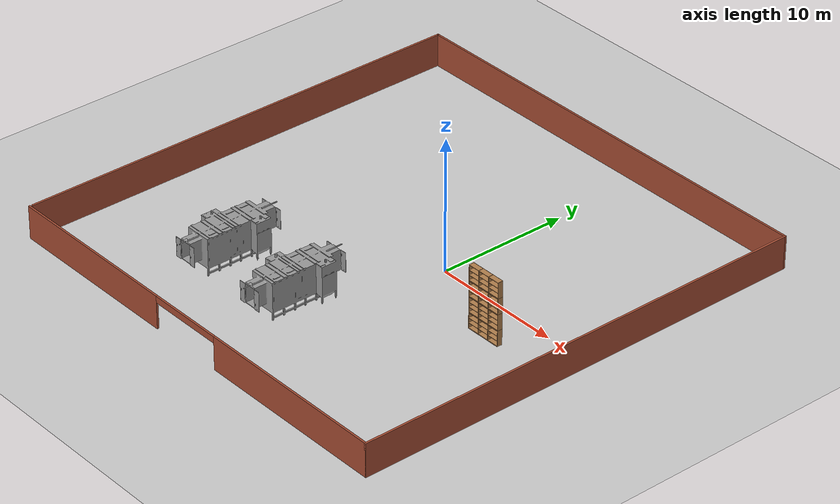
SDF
<sdf version="1.6">
 <world name="default">
  <model name="ground_plane">
   <static>1</static>
   <link name="link">
    <collision name="collision">
     <geometry><plane><normal>0 0 1</normal><size>100 100</size></plane></geometry>
     <surface>
      <contact><collide_bitmask>65535</collide_bitmask></contact>
      <friction><ode><mu>100</mu><mu2>50</mu2></ode></friction>
     </surface>
    </collision>
    <visual name="visual">
     <cast_shadows>0</cast_shadows>
     <geometry><plane><normal>0 0 1</normal><size>100 100</size></plane></geometry>
     <material>
      <script><uri>file://media/materials/scripts/gazebo.material</uri><name>Gazebo/Grey</name></script>
     </material>
    </visual>
   </link>
  </model>
  <model name="shelf2.0_clone_0">
   <model name="shelf1.0">
    <model name="bookshelf">
     <static>1</static>
     <link name="link">
      <inertial><mass>1</mass></inertial>
      <collision name="back">
       <pose>0 0.005 0.6 0 -0 0</pose>
       <geometry><box><size>0.9 0.01 1.2</size></box></geometry>
      </collision>
      <visual name="visual1">
       <pose>0 0.005 0.6 0 -0 0</pose>
       <geometry><box><size>0.9 0.01 1.2</size></box></geometry>
       <material>
        <script><uri>file://media/materials/scripts/gazebo.material</uri><name>Gazebo/Wood</name></script>
       </material>
      </visual>
      <collision name="left_side">
       <pose>0.45 -0.195 0.6 0 -0 0</pose>
       <geometry><box><size>0.02 0.4 1.2</size></box></geometry>
      </collision>
      <visual name="visual2">
       <pose>0.45 -0.195 0.6 0 -0 0</pose>
       <geometry><box><size>0.02 0.4 1.2</size></box></geometry>
       <material>
        <script><uri>file://media/materials/scripts/gazebo.material</uri><name>Gazebo/Wood</name></script>
       </material>
      </visual>
      <collision name="right_side">
       <pose>-0.45 -0.195 0.6 0 -0 0</pose>
       <geometry><box><size>0.02 0.4 1.2</size></box></geometry>
      </collision>
      <visual name="visual3">
       <pose>-0.45 -0.195 0.6 0 -0 0</pose>
       <geometry><box><size>0.02 0.4 1.2</size></box></geometry>
       <material>
        <script><uri>file://media/materials/scripts/gazebo.material</uri><name>Gazebo/Wood</name></script>
       </material>
      </visual>
      <collision name="bottom">
       <pose>0 -0.195 0.03 0 -0 0</pose>
       <geometry><box><size>0.88 0.4 0.06</size></box></geometry>
      </collision>
      <visual name="visual4">
       <pose>0 -0.195 0.03 0 -0 0</pose>
       <geometry><box><size>0.88 0.4 0.06</size></box></geometry>
       <material>
        <script><uri>file://media/materials/scripts/gazebo.material</uri><name>Gazebo/Wood</name></script>
       </material>
      </visual>
      <collision name="top">
       <pose>0 -0.195 1.19 0 -0 0</pose>
       <geometry><box><size>0.88 0.4 0.02</size></box></geometry>
      </collision>
      <visual name="visual5">
       <pose>0 -0.195 1.19 0 -0 0</pose>
       <geometry><box><size>0.88 0.4 0.02</size></box></geometry>
       <material>
        <script><uri>file://media/materials/scripts/gazebo.material</uri><name>Gazebo/Wood</name></script>
       </material>
      </visual>
      <collision name="low_shelf">
       <pose>0 -0.195 0.43 0 -0 0</pose>
       <geometry><box><size>0.88 0.4 0.02</size></box></geometry>
      </collision>
      <visual name="visual6">
       <pose>0 -0.195 0.43 0 -0 0</pose>
       <geometry><box><size>0.88 0.4 0.02</size></box></geometry>
       <material>
        <script><uri>file://media/materials/scripts/gazebo.material</uri><name>Gazebo/Wood</name></script>
       </material>
      </visual>
      <collision name="high_shelf">
       <pose>0 -0.195 0.8 0 -0 0</pose>
       <geometry><box><size>0.88 0.4 0.02</size></box></geometry>
      </collision>
      <visual name="visual7">
       <pose>0 -0.195 0.8 0 -0 0</pose>
       <geometry><box><size>0.88 0.4 0.02</size></box></geometry>
       <material>
        <script><uri>file://media/materials/scripts/gazebo.material</uri><name>Gazebo/Wood</name></script>
       </material>
      </visual>
     </link>
     <pose>1e-06 0 -1.8 0 -0 0</pose>
    </model>
    <model name="bookshelf_clone">
     <static>1</static>
     <link name="link">
      <inertial><mass>1</mass></inertial>
      <collision name="back">
       <pose>0 0.005 0.6 0 -0 0</pose>
       <geometry><box><size>0.9 0.01 1.2</size></box></geometry>
      </collision>
      <visual name="visual1">
       <pose>0 0.005 0.6 0 -0 0</pose>
       <geometry><box><size>0.9 0.01 1.2</size></box></geometry>
       <material>
        <script><uri>file://media/materials/scripts/gazebo.material</uri><name>Gazebo/Wood</name></script>
       </material>
      </visual>
      <collision name="left_side">
       <pose>0.45 -0.195 0.6 0 -0 0</pose>
       <geometry><box><size>0.02 0.4 1.2</size></box></geometry>
      </collision>
      <visual name="visual2">
       <pose>0.45 -0.195 0.6 0 -0 0</pose>
       <geometry><box><size>0.02 0.4 1.2</size></box></geometry>
       <material>
        <script><uri>file://media/materials/scripts/gazebo.material</uri><name>Gazebo/Wood</name></script>
       </material>
      </visual>
      <collision name="right_side">
       <pose>-0.45 -0.195 0.6 0 -0 0</pose>
       <geometry><box><size>0.02 0.4 1.2</size></box></geometry>
      </collision>
      <visual name="visual3">
       <pose>-0.45 -0.195 0.6 0 -0 0</pose>
       <geometry><box><size>0.02 0.4 1.2</size></box></geometry>
       <material>
        <script><uri>file://media/materials/scripts/gazebo.material</uri><name>Gazebo/Wood</name></script>
       </material>
      </visual>
      <collision name="bottom">
       <pose>0 -0.195 0.03 0 -0 0</pose>
       <geometry><box><size>0.88 0.4 0.06</size></box></geometry>
      </collision>
      <visual name="visual4">
       <pose>0 -0.195 0.03 0 -0 0</pose>
       <geometry><box><size>0.88 0.4 0.06</size></box></geometry>
       <material>
        <script><uri>file://media/materials/scripts/gazebo.material</uri><name>Gazebo/Wood</name></script>
       </material>
      </visual>
      <collision name="top">
       <pose>0 -0.195 1.19 0 -0 0</pose>
       <geometry><box><size>0.88 0.4 0.02</size></box></geometry>
      </collision>
      <visual name="visual5">
       <pose>0 -0.195 1.19 0 -0 0</pose>
       <geometry><box><size>0.88 0.4 0.02</size></box></geometry>
       <material>
        <script><uri>file://media/materials/scripts/gazebo.material</uri><name>Gazebo/Wood</name></script>
       </material>
      </visual>
      <collision name="low_shelf">
       <pose>0 -0.195 0.43 0 -0 0</pose>
       <geometry><box><size>0.88 0.4 0.02</size></box></geometry>
      </collision>
      <visual name="visual6">
       <pose>0 -0.195 0.43 0 -0 0</pose>
       <geometry><box><size>0.88 0.4 0.02</size></box></geometry>
       <material>
        <script><uri>file://media/materials/scripts/gazebo.material</uri><name>Gazebo/Wood</name></script>
       </material>
      </visual>
      <collision name="high_shelf">
       <pose>0 -0.195 0.8 0 -0 0</pose>
       <geometry><box><size>0.88 0.4 0.02</size></box></geometry>
      </collision>
      <visual name="visual7">
       <pose>0 -0.195 0.8 0 -0 0</pose>
       <geometry><box><size>0.88 0.4 0.02</size></box></geometry>
       <material>
        <script><uri>file://media/materials/scripts/gazebo.material</uri><name>Gazebo/Wood</name></script>
       </material>
      </visual>
     </link>
     <pose>1e-06 0 -0.600002 0 -0 0</pose>
    </model>
    <model name="bookshelf_clone_0">
     <static>1</static>
     <link name="link">
      <inertial><mass>1</mass></inertial>
      <collision name="back">
       <pose>0 0.005 0.6 0 -0 0</pose>
       <geometry><box><size>0.9 0.01 1.2</size></box></geometry>
      </collision>
      <visual name="visual1">
       <pose>0 0.005 0.6 0 -0 0</pose>
       <geometry><box><size>0.9 0.01 1.2</size></box></geometry>
       <material>
        <script><uri>file://media/materials/scripts/gazebo.material</uri><name>Gazebo/Wood</name></script>
       </material>
      </visual>
      <collision name="left_side">
       <pose>0.45 -0.195 0.6 0 -0 0</pose>
       <geometry><box><size>0.02 0.4 1.2</size></box></geometry>
      </collision>
      <visual name="visual2">
       <pose>0.45 -0.195 0.6 0 -0 0</pose>
       <geometry><box><size>0.02 0.4 1.2</size></box></geometry>
       <material>
        <script><uri>file://media/materials/scripts/gazebo.material</uri><name>Gazebo/Wood</name></script>
       </material>
      </visual>
      <collision name="right_side">
       <pose>-0.45 -0.195 0.6 0 -0 0</pose>
       <geometry><box><size>0.02 0.4 1.2</size></box></geometry>
      </collision>
      <visual name="visual3">
       <pose>-0.45 -0.195 0.6 0 -0 0</pose>
       <geometry><box><size>0.02 0.4 1.2</size></box></geometry>
       <material>
        <script><uri>file://media/materials/scripts/gazebo.material</uri><name>Gazebo/Wood</name></script>
       </material>
      </visual>
      <collision name="bottom">
       <pose>0 -0.195 0.03 0 -0 0</pose>
       <geometry><box><size>0.88 0.4 0.06</size></box></geometry>
      </collision>
      <visual name="visual4">
       <pose>0 -0.195 0.03 0 -0 0</pose>
       <geometry><box><size>0.88 0.4 0.06</size></box></geometry>
       <material>
        <script><uri>file://media/materials/scripts/gazebo.material</uri><name>Gazebo/Wood</name></script>
       </material>
      </visual>
      <collision name="top">
       <pose>0 -0.195 1.19 0 -0 0</pose>
       <geometry><box><size>0.88 0.4 0.02</size></box></geometry>
      </collision>
      <visual name="visual5">
       <pose>0 -0.195 1.19 0 -0 0</pose>
       <geometry><box><size>0.88 0.4 0.02</size></box></geometry>
       <material>
        <script><uri>file://media/materials/scripts/gazebo.material</uri><name>Gazebo/Wood</name></script>
       </material>
      </visual>
      <collision name="low_shelf">
       <pose>0 -0.195 0.43 0 -0 0</pose>
       <geometry><box><size>0.88 0.4 0.02</size></box></geometry>
      </collision>
      <visual name="visual6">
       <pose>0 -0.195 0.43 0 -0 0</pose>
       <geometry><box><size>0.88 0.4 0.02</size></box></geometry>
       <material>
        <script><uri>file://media/materials/scripts/gazebo.material</uri><name>Gazebo/Wood</name></script>
       </material>
      </visual>
      <collision name="high_shelf">
       <pose>0 -0.195 0.8 0 -0 0</pose>
       <geometry><box><size>0.88 0.4 0.02</size></box></geometry>
      </collision>
      <visual name="visual7">
       <pose>0 -0.195 0.8 0 -0 0</pose>
       <geometry><box><size>0.88 0.4 0.02</size></box></geometry>
       <material>
        <script><uri>file://media/materials/scripts/gazebo.material</uri><name>Gazebo/Wood</name></script>
       </material>
      </visual>
     </link>
     <pose>1e-06 0 0.599998 0 -0 0</pose>
    </model>
    <model name="bookshelf_clone_0_clone">
     <static>1</static>
     <link name="link">
      <inertial><mass>1</mass></inertial>
      <collision name="back">
       <pose>0 0.005 0.6 0 -0 0</pose>
       <geometry><box><size>0.9 0.01 1.2</size></box></geometry>
      </collision>
      <visual name="visual1">
       <pose>0 0.005 0.6 0 -0 0</pose>
       <geometry><box><size>0.9 0.01 1.2</size></box></geometry>
       <material>
        <script><uri>file://media/materials/scripts/gazebo.material</uri><name>Gazebo/Wood</name></script>
       </material>
      </visual>
      <collision name="left_side">
       <pose>0.45 -0.195 0.6 0 -0 0</pose>
       <geometry><box><size>0.02 0.4 1.2</size></box></geometry>
      </collision>
      <visual name="visual2">
       <pose>0.45 -0.195 0.6 0 -0 0</pose>
       <geometry><box><size>0.02 0.4 1.2</size></box></geometry>
       <material>
        <script><uri>file://media/materials/scripts/gazebo.material</uri><name>Gazebo/Wood</name></script>
       </material>
      </visual>
      <collision name="right_side">
       <pose>-0.45 -0.195 0.6 0 -0 0</pose>
       <geometry><box><size>0.02 0.4 1.2</size></box></geometry>
      </collision>
      <visual name="visual3">
       <pose>-0.45 -0.195 0.6 0 -0 0</pose>
       <geometry><box><size>0.02 0.4 1.2</size></box></geometry>
       <material>
        <script><uri>file://media/materials/scripts/gazebo.material</uri><name>Gazebo/Wood</name></script>
       </material>
      </visual>
      <collision name="bottom">
       <pose>0 -0.195 0.03 0 -0 0</pose>
       <geometry><box><size>0.88 0.4 0.06</size></box></geometry>
      </collision>
      <visual name="visual4">
       <pose>0 -0.195 0.03 0 -0 0</pose>
       <geometry><box><size>0.88 0.4 0.06</size></box></geometry>
       <material>
        <script><uri>file://media/materials/scripts/gazebo.material</uri><name>Gazebo/Wood</name></script>
       </material>
      </visual>
      <collision name="top">
       <pose>0 -0.195 1.19 0 -0 0</pose>
       <geometry><box><size>0.88 0.4 0.02</size></box></geometry>
      </collision>
      <visual name="visual5">
       <pose>0 -0.195 1.19 0 -0 0</pose>
       <geometry><box><size>0.88 0.4 0.02</size></box></geometry>
       <material>
        <script><uri>file://media/materials/scripts/gazebo.material</uri><name>Gazebo/Wood</name></script>
       </material>
      </visual>
      <collision name="low_shelf">
       <pose>0 -0.195 0.43 0 -0 0</pose>
       <geometry><box><size>0.88 0.4 0.02</size></box></geometry>
      </collision>
      <visual name="visual6">
       <pose>0 -0.195 0.43 0 -0 0</pose>
       <geometry><box><size>0.88 0.4 0.02</size></box></geometry>
       <material>
        <script><uri>file://media/materials/scripts/gazebo.material</uri><name>Gazebo/Wood</name></script>
       </material>
      </visual>
      <collision name="high_shelf">
       <pose>0 -0.195 0.8 0 -0 0</pose>
       <geometry><box><size>0.88 0.4 0.02</size></box></geometry>
      </collision>
      <visual name="visual7">
       <pose>0 -0.195 0.8 0 -0 0</pose>
       <geometry><box><size>0.88 0.4 0.02</size></box></geometry>
       <material>
        <script><uri>file://media/materials/scripts/gazebo.material</uri><name>Gazebo/Wood</name></script>
       </material>
      </visual>
     </link>
     <pose>1e-06 0 1.8 0 -0 0</pose>
    </model>
    <joint name="link_JOINT_3" type="fixed">
     <parent>bookshelf::link</parent>
     <child>bookshelf_clone::link</child>
     <physics>
      <ode><limit><cfm>0</cfm><erp>0.2</erp></limit><suspension><cfm>0</cfm><erp>0.2</erp></suspension></ode>
     </physics>
    </joint>
    <joint name="link_JOINT_4" type="fixed">
     <parent>bookshelf::link</parent>
     <child>bookshelf_clone_0::link</child>
     <physics>
      <ode><limit><cfm>0</cfm><erp>0.2</erp></limit><suspension><cfm>0</cfm><erp>0.2</erp></suspension></ode>
     </physics>
    </joint>
    <joint name="link_JOINT_5" type="fixed">
     <parent>bookshelf::link</parent>
     <child>bookshelf_clone_0_clone::link</child>
     <physics>
      <ode><limit><cfm>0</cfm><erp>0.2</erp></limit><suspension><cfm>0</cfm><erp>0.2</erp></suspension></ode>
     </physics>
    </joint>
    <static>0</static>
    <pose>-0.920027 0 0 0 -0 0</pose>
   </model>
   <model name="shelf1.0_clone">
    <model name="bookshelf">
     <static>1</static>
     <link name="link">
      <inertial><mass>1</mass></inertial>
      <collision name="back">
       <pose>0 0.005 0.6 0 -0 0</pose>
       <geometry><box><size>0.9 0.01 1.2</size></box></geometry>
      </collision>
      <visual name="visual1">
       <pose>0 0.005 0.6 0 -0 0</pose>
       <geometry><box><size>0.9 0.01 1.2</size></box></geometry>
       <material>
        <script><uri>file://media/materials/scripts/gazebo.material</uri><name>Gazebo/Wood</name></script>
       </material>
      </visual>
      <collision name="left_side">
       <pose>0.45 -0.195 0.6 0 -0 0</pose>
       <geometry><box><size>0.02 0.4 1.2</size></box></geometry>
      </collision>
      <visual name="visual2">
       <pose>0.45 -0.195 0.6 0 -0 0</pose>
       <geometry><box><size>0.02 0.4 1.2</size></box></geometry>
       <material>
        <script><uri>file://media/materials/scripts/gazebo.material</uri><name>Gazebo/Wood</name></script>
       </material>
      </visual>
      <collision name="right_side">
       <pose>-0.45 -0.195 0.6 0 -0 0</pose>
       <geometry><box><size>0.02 0.4 1.2</size></box></geometry>
      </collision>
      <visual name="visual3">
       <pose>-0.45 -0.195 0.6 0 -0 0</pose>
       <geometry><box><size>0.02 0.4 1.2</size></box></geometry>
       <material>
        <script><uri>file://media/materials/scripts/gazebo.material</uri><name>Gazebo/Wood</name></script>
       </material>
      </visual>
      <collision name="bottom">
       <pose>0 -0.195 0.03 0 -0 0</pose>
       <geometry><box><size>0.88 0.4 0.06</size></box></geometry>
      </collision>
      <visual name="visual4">
       <pose>0 -0.195 0.03 0 -0 0</pose>
       <geometry><box><size>0.88 0.4 0.06</size></box></geometry>
       <material>
        <script><uri>file://media/materials/scripts/gazebo.material</uri><name>Gazebo/Wood</name></script>
       </material>
      </visual>
      <collision name="top">
       <pose>0 -0.195 1.19 0 -0 0</pose>
       <geometry><box><size>0.88 0.4 0.02</size></box></geometry>
      </collision>
      <visual name="visual5">
       <pose>0 -0.195 1.19 0 -0 0</pose>
       <geometry><box><size>0.88 0.4 0.02</size></box></geometry>
       <material>
        <script><uri>file://media/materials/scripts/gazebo.material</uri><name>Gazebo/Wood</name></script>
       </material>
      </visual>
      <collision name="low_shelf">
       <pose>0 -0.195 0.43 0 -0 0</pose>
       <geometry><box><size>0.88 0.4 0.02</size></box></geometry>
      </collision>
      <visual name="visual6">
       <pose>0 -0.195 0.43 0 -0 0</pose>
       <geometry><box><size>0.88 0.4 0.02</size></box></geometry>
       <material>
        <script><uri>file://media/materials/scripts/gazebo.material</uri><name>Gazebo/Wood</name></script>
       </material>
      </visual>
      <collision name="high_shelf">
       <pose>0 -0.195 0.8 0 -0 0</pose>
       <geometry><box><size>0.88 0.4 0.02</size></box></geometry>
      </collision>
      <visual name="visual7">
       <pose>0 -0.195 0.8 0 -0 0</pose>
       <geometry><box><size>0.88 0.4 0.02</size></box></geometry>
       <material>
        <script><uri>file://media/materials/scripts/gazebo.material</uri><name>Gazebo/Wood</name></script>
       </material>
      </visual>
     </link>
     <pose>1e-06 0 -1.8 0 -0 0</pose>
    </model>
    <model name="bookshelf_clone">
     <static>1</static>
     <link name="link">
      <inertial><mass>1</mass></inertial>
      <collision name="back">
       <pose>0 0.005 0.6 0 -0 0</pose>
       <geometry><box><size>0.9 0.01 1.2</size></box></geometry>
      </collision>
      <visual name="visual1">
       <pose>0 0.005 0.6 0 -0 0</pose>
       <geometry><box><size>0.9 0.01 1.2</size></box></geometry>
       <material>
        <script><uri>file://media/materials/scripts/gazebo.material</uri><name>Gazebo/Wood</name></script>
       </material>
      </visual>
      <collision name="left_side">
       <pose>0.45 -0.195 0.6 0 -0 0</pose>
       <geometry><box><size>0.02 0.4 1.2</size></box></geometry>
      </collision>
      <visual name="visual2">
       <pose>0.45 -0.195 0.6 0 -0 0</pose>
       <geometry><box><size>0.02 0.4 1.2</size></box></geometry>
       <material>
        <script><uri>file://media/materials/scripts/gazebo.material</uri><name>Gazebo/Wood</name></script>
       </material>
      </visual>
      <collision name="right_side">
       <pose>-0.45 -0.195 0.6 0 -0 0</pose>
       <geometry><box><size>0.02 0.4 1.2</size></box></geometry>
      </collision>
      <visual name="visual3">
       <pose>-0.45 -0.195 0.6 0 -0 0</pose>
       <geometry><box><size>0.02 0.4 1.2</size></box></geometry>
       <material>
        <script><uri>file://media/materials/scripts/gazebo.material</uri><name>Gazebo/Wood</name></script>
       </material>
      </visual>
      <collision name="bottom">
       <pose>0 -0.195 0.03 0 -0 0</pose>
       <geometry><box><size>0.88 0.4 0.06</size></box></geometry>
      </collision>
      <visual name="visual4">
       <pose>0 -0.195 0.03 0 -0 0</pose>
       <geometry><box><size>0.88 0.4 0.06</size></box></geometry>
       <material>
        <script><uri>file://media/materials/scripts/gazebo.material</uri><name>Gazebo/Wood</name></script>
       </material>
      </visual>
      <collision name="top">
       <pose>0 -0.195 1.19 0 -0 0</pose>
       <geometry><box><size>0.88 0.4 0.02</size></box></geometry>
      </collision>
      <visual name="visual5">
       <pose>0 -0.195 1.19 0 -0 0</pose>
       <geometry><box><size>0.88 0.4 0.02</size></box></geometry>
       <material>
        <script><uri>file://media/materials/scripts/gazebo.material</uri><name>Gazebo/Wood</name></script>
       </material>
      </visual>
      <collision name="low_shelf">
       <pose>0 -0.195 0.43 0 -0 0</pose>
       <geometry><box><size>0.88 0.4 0.02</size></box></geometry>
      </collision>
      <visual name="visual6">
       <pose>0 -0.195 0.43 0 -0 0</pose>
       <geometry><box><size>0.88 0.4 0.02</size></box></geometry>
       <material>
        <script><uri>file://media/materials/scripts/gazebo.material</uri><name>Gazebo/Wood</name></script>
       </material>
      </visual>
      <collision name="high_shelf">
       <pose>0 -0.195 0.8 0 -0 0</pose>
       <geometry><box><size>0.88 0.4 0.02</size></box></geometry>
      </collision>
      <visual name="visual7">
       <pose>0 -0.195 0.8 0 -0 0</pose>
       <geometry><box><size>0.88 0.4 0.02</size></box></geometry>
       <material>
        <script><uri>file://media/materials/scripts/gazebo.material</uri><name>Gazebo/Wood</name></script>
       </material>
      </visual>
     </link>
     <pose>1e-06 0 -0.600002 0 -0 0</pose>
    </model>
    <model name="bookshelf_clone_0">
     <static>1</static>
     <link name="link">
      <inertial><mass>1</mass></inertial>
      <collision name="back">
       <pose>0 0.005 0.6 0 -0 0</pose>
       <geometry><box><size>0.9 0.01 1.2</size></box></geometry>
      </collision>
      <visual name="visual1">
       <pose>0 0.005 0.6 0 -0 0</pose>
       <geometry><box><size>0.9 0.01 1.2</size></box></geometry>
       <material>
        <script><uri>file://media/materials/scripts/gazebo.material</uri><name>Gazebo/Wood</name></script>
       </material>
      </visual>
      <collision name="left_side">
       <pose>0.45 -0.195 0.6 0 -0 0</pose>
       <geometry><box><size>0.02 0.4 1.2</size></box></geometry>
      </collision>
      <visual name="visual2">
       <pose>0.45 -0.195 0.6 0 -0 0</pose>
       <geometry><box><size>0.02 0.4 1.2</size></box></geometry>
       <material>
        <script><uri>file://media/materials/scripts/gazebo.material</uri><name>Gazebo/Wood</name></script>
       </material>
      </visual>
      <collision name="right_side">
       <pose>-0.45 -0.195 0.6 0 -0 0</pose>
       <geometry><box><size>0.02 0.4 1.2</size></box></geometry>
      </collision>
      <visual name="visual3">
       <pose>-0.45 -0.195 0.6 0 -0 0</pose>
       <geometry><box><size>0.02 0.4 1.2</size></box></geometry>
       <material>
        <script><uri>file://media/materials/scripts/gazebo.material</uri><name>Gazebo/Wood</name></script>
       </material>
      </visual>
      <collision name="bottom">
       <pose>0 -0.195 0.03 0 -0 0</pose>
       <geometry><box><size>0.88 0.4 0.06</size></box></geometry>
      </collision>
      <visual name="visual4">
       <pose>0 -0.195 0.03 0 -0 0</pose>
       <geometry><box><size>0.88 0.4 0.06</size></box></geometry>
       <material>
        <script><uri>file://media/materials/scripts/gazebo.material</uri><name>Gazebo/Wood</name></script>
       </material>
      </visual>
      <collision name="top">
       <pose>0 -0.195 1.19 0 -0 0</pose>
       <geometry><box><size>0.88 0.4 0.02</size></box></geometry>
      </collision>
      <visual name="visual5">
       <pose>0 -0.195 1.19 0 -0 0</pose>
       <geometry><box><size>0.88 0.4 0.02</size></box></geometry>
       <material>
        <script><uri>file://media/materials/scripts/gazebo.material</uri><name>Gazebo/Wood</name></script>
       </material>
      </visual>
      <collision name="low_shelf">
       <pose>0 -0.195 0.43 0 -0 0</pose>
       <geometry><box><size>0.88 0.4 0.02</size></box></geometry>
      </collision>
      <visual name="visual6">
       <pose>0 -0.195 0.43 0 -0 0</pose>
       <geometry><box><size>0.88 0.4 0.02</size></box></geometry>
       <material>
        <script><uri>file://media/materials/scripts/gazebo.material</uri><name>Gazebo/Wood</name></script>
       </material>
      </visual>
      <collision name="high_shelf">
       <pose>0 -0.195 0.8 0 -0 0</pose>
       <geometry><box><size>0.88 0.4 0.02</size></box></geometry>
      </collision>
      <visual name="visual7">
       <pose>0 -0.195 0.8 0 -0 0</pose>
       <geometry><box><size>0.88 0.4 0.02</size></box></geometry>
       <material>
        <script><uri>file://media/materials/scripts/gazebo.material</uri><name>Gazebo/Wood</name></script>
       </material>
      </visual>
     </link>
     <pose>1e-06 0 0.599998 0 -0 0</pose>
    </model>
    <model name="bookshelf_clone_0_clone">
     <static>1</static>
     <link name="link">
      <inertial><mass>1</mass></inertial>
      <collision name="back">
       <pose>0 0.005 0.6 0 -0 0</pose>
       <geometry><box><size>0.9 0.01 1.2</size></box></geometry>
      </collision>
      <visual name="visual1">
       <pose>0 0.005 0.6 0 -0 0</pose>
       <geometry><box><size>0.9 0.01 1.2</size></box></geometry>
       <material>
        <script><uri>file://media/materials/scripts/gazebo.material</uri><name>Gazebo/Wood</name></script>
       </material>
      </visual>
      <collision name="left_side">
       <pose>0.45 -0.195 0.6 0 -0 0</pose>
       <geometry><box><size>0.02 0.4 1.2</size></box></geometry>
      </collision>
      <visual name="visual2">
       <pose>0.45 -0.195 0.6 0 -0 0</pose>
       <geometry><box><size>0.02 0.4 1.2</size></box></geometry>
       <material>
        <script><uri>file://media/materials/scripts/gazebo.material</uri><name>Gazebo/Wood</name></script>
       </material>
      </visual>
      <collision name="right_side">
       <pose>-0.45 -0.195 0.6 0 -0 0</pose>
       <geometry><box><size>0.02 0.4 1.2</size></box></geometry>
      </collision>
      <visual name="visual3">
       <pose>-0.45 -0.195 0.6 0 -0 0</pose>
       <geometry><box><size>0.02 0.4 1.2</size></box></geometry>
       <material>
        <script><uri>file://media/materials/scripts/gazebo.material</uri><name>Gazebo/Wood</name></script>
       </material>
      </visual>
      <collision name="bottom">
       <pose>0 -0.195 0.03 0 -0 0</pose>
       <geometry><box><size>0.88 0.4 0.06</size></box></geometry>
      </collision>
      <visual name="visual4">
       <pose>0 -0.195 0.03 0 -0 0</pose>
       <geometry><box><size>0.88 0.4 0.06</size></box></geometry>
       <material>
        <script><uri>file://media/materials/scripts/gazebo.material</uri><name>Gazebo/Wood</name></script>
       </material>
      </visual>
      <collision name="top">
       <pose>0 -0.195 1.19 0 -0 0</pose>
       <geometry><box><size>0.88 0.4 0.02</size></box></geometry>
      </collision>
      <visual name="visual5">
       <pose>0 -0.195 1.19 0 -0 0</pose>
       <geometry><box><size>0.88 0.4 0.02</size></box></geometry>
       <material>
        <script><uri>file://media/materials/scripts/gazebo.material</uri><name>Gazebo/Wood</name></script>
       </material>
      </visual>
      <collision name="low_shelf">
       <pose>0 -0.195 0.43 0 -0 0</pose>
       <geometry><box><size>0.88 0.4 0.02</size></box></geometry>
      </collision>
      <visual name="visual6">
       <pose>0 -0.195 0.43 0 -0 0</pose>
       <geometry><box><size>0.88 0.4 0.02</size></box></geometry>
       <material>
        <script><uri>file://media/materials/scripts/gazebo.material</uri><name>Gazebo/Wood</name></script>
       </material>
      </visual>
      <collision name="high_shelf">
       <pose>0 -0.195 0.8 0 -0 0</pose>
       <geometry><box><size>0.88 0.4 0.02</size></box></geometry>
      </collision>
      <visual name="visual7">
       <pose>0 -0.195 0.8 0 -0 0</pose>
       <geometry><box><size>0.88 0.4 0.02</size></box></geometry>
       <material>
        <script><uri>file://media/materials/scripts/gazebo.material</uri><name>Gazebo/Wood</name></script>
       </material>
      </visual>
     </link>
     <pose>1e-06 0 1.8 0 -0 0</pose>
    </model>
    <joint name="link_JOINT_3" type="fixed">
     <parent>bookshelf::link</parent>
     <child>bookshelf_clone::link</child>
     <physics>
      <ode><limit><cfm>0</cfm><erp>0.2</erp></limit><suspension><cfm>0</cfm><erp>0.2</erp></suspension></ode>
     </physics>
    </joint>
    <joint name="link_JOINT_4" type="fixed">
     <parent>bookshelf::link</parent>
     <child>bookshelf_clone_0::link</child>
     <physics>
      <ode><limit><cfm>0</cfm><erp>0.2</erp></limit><suspension><cfm>0</cfm><erp>0.2</erp></suspension></ode>
     </physics>
    </joint>
    <joint name="link_JOINT_5" type="fixed">
     <parent>bookshelf::link</parent>
     <child>bookshelf_clone_0_clone::link</child>
     <physics>
      <ode><limit><cfm>0</cfm><erp>0.2</erp></limit><suspension><cfm>0</cfm><erp>0.2</erp></suspension></ode>
     </physics>
    </joint>
    <static>0</static>
    <pose>-2.5e-05 0 0 0 -0 0</pose>
   </model>
   <model name="shelf1.0_clone_0">
    <model name="bookshelf">
     <static>1</static>
     <link name="link">
      <inertial><mass>1</mass></inertial>
      <collision name="back">
       <pose>0 0.005 0.6 0 -0 0</pose>
       <geometry><box><size>0.9 0.01 1.2</size></box></geometry>
      </collision>
      <visual name="visual1">
       <pose>0 0.005 0.6 0 -0 0</pose>
       <geometry><box><size>0.9 0.01 1.2</size></box></geometry>
       <material>
        <script><uri>file://media/materials/scripts/gazebo.material</uri><name>Gazebo/Wood</name></script>
       </material>
      </visual>
      <collision name="left_side">
       <pose>0.45 -0.195 0.6 0 -0 0</pose>
       <geometry><box><size>0.02 0.4 1.2</size></box></geometry>
      </collision>
      <visual name="visual2">
       <pose>0.45 -0.195 0.6 0 -0 0</pose>
       <geometry><box><size>0.02 0.4 1.2</size></box></geometry>
       <material>
        <script><uri>file://media/materials/scripts/gazebo.material</uri><name>Gazebo/Wood</name></script>
       </material>
      </visual>
      <collision name="right_side">
       <pose>-0.45 -0.195 0.6 0 -0 0</pose>
       <geometry><box><size>0.02 0.4 1.2</size></box></geometry>
      </collision>
      <visual name="visual3">
       <pose>-0.45 -0.195 0.6 0 -0 0</pose>
       <geometry><box><size>0.02 0.4 1.2</size></box></geometry>
       <material>
        <script><uri>file://media/materials/scripts/gazebo.material</uri><name>Gazebo/Wood</name></script>
       </material>
      </visual>
      <collision name="bottom">
       <pose>0 -0.195 0.03 0 -0 0</pose>
       <geometry><box><size>0.88 0.4 0.06</size></box></geometry>
      </collision>
      <visual name="visual4">
       <pose>0 -0.195 0.03 0 -0 0</pose>
       <geometry><box><size>0.88 0.4 0.06</size></box></geometry>
       <material>
        <script><uri>file://media/materials/scripts/gazebo.material</uri><name>Gazebo/Wood</name></script>
       </material>
      </visual>
      <collision name="top">
       <pose>0 -0.195 1.19 0 -0 0</pose>
       <geometry><box><size>0.88 0.4 0.02</size></box></geometry>
      </collision>
      <visual name="visual5">
       <pose>0 -0.195 1.19 0 -0 0</pose>
       <geometry><box><size>0.88 0.4 0.02</size></box></geometry>
       <material>
        <script><uri>file://media/materials/scripts/gazebo.material</uri><name>Gazebo/Wood</name></script>
       </material>
      </visual>
      <collision name="low_shelf">
       <pose>0 -0.195 0.43 0 -0 0</pose>
       <geometry><box><size>0.88 0.4 0.02</size></box></geometry>
      </collision>
      <visual name="visual6">
       <pose>0 -0.195 0.43 0 -0 0</pose>
       <geometry><box><size>0.88 0.4 0.02</size></box></geometry>
       <material>
        <script><uri>file://media/materials/scripts/gazebo.material</uri><name>Gazebo/Wood</name></script>
       </material>
      </visual>
      <collision name="high_shelf">
       <pose>0 -0.195 0.8 0 -0 0</pose>
       <geometry><box><size>0.88 0.4 0.02</size></box></geometry>
      </collision>
      <visual name="visual7">
       <pose>0 -0.195 0.8 0 -0 0</pose>
       <geometry><box><size>0.88 0.4 0.02</size></box></geometry>
       <material>
        <script><uri>file://media/materials/scripts/gazebo.material</uri><name>Gazebo/Wood</name></script>
       </material>
      </visual>
     </link>
     <pose>1e-06 0 -1.8 0 -0 0</pose>
    </model>
    <model name="bookshelf_clone">
     <static>1</static>
     <link name="link">
      <inertial><mass>1</mass></inertial>
      <collision name="back">
       <pose>0 0.005 0.6 0 -0 0</pose>
       <geometry><box><size>0.9 0.01 1.2</size></box></geometry>
      </collision>
      <visual name="visual1">
       <pose>0 0.005 0.6 0 -0 0</pose>
       <geometry><box><size>0.9 0.01 1.2</size></box></geometry>
       <material>
        <script><uri>file://media/materials/scripts/gazebo.material</uri><name>Gazebo/Wood</name></script>
       </material>
      </visual>
      <collision name="left_side">
       <pose>0.45 -0.195 0.6 0 -0 0</pose>
       <geometry><box><size>0.02 0.4 1.2</size></box></geometry>
      </collision>
      <visual name="visual2">
       <pose>0.45 -0.195 0.6 0 -0 0</pose>
       <geometry><box><size>0.02 0.4 1.2</size></box></geometry>
       <material>
        <script><uri>file://media/materials/scripts/gazebo.material</uri><name>Gazebo/Wood</name></script>
       </material>
      </visual>
      <collision name="right_side">
       <pose>-0.45 -0.195 0.6 0 -0 0</pose>
       <geometry><box><size>0.02 0.4 1.2</size></box></geometry>
      </collision>
      <visual name="visual3">
       <pose>-0.45 -0.195 0.6 0 -0 0</pose>
       <geometry><box><size>0.02 0.4 1.2</size></box></geometry>
       <material>
        <script><uri>file://media/materials/scripts/gazebo.material</uri><name>Gazebo/Wood</name></script>
       </material>
      </visual>
      <collision name="bottom">
       <pose>0 -0.195 0.03 0 -0 0</pose>
       <geometry><box><size>0.88 0.4 0.06</size></box></geometry>
      </collision>
      <visual name="visual4">
       <pose>0 -0.195 0.03 0 -0 0</pose>
       <geometry><box><size>0.88 0.4 0.06</size></box></geometry>
       <material>
        <script><uri>file://media/materials/scripts/gazebo.material</uri><name>Gazebo/Wood</name></script>
       </material>
      </visual>
      <collision name="top">
       <pose>0 -0.195 1.19 0 -0 0</pose>
       <geometry><box><size>0.88 0.4 0.02</size></box></geometry>
      </collision>
      <visual name="visual5">
       <pose>0 -0.195 1.19 0 -0 0</pose>
       <geometry><box><size>0.88 0.4 0.02</size></box></geometry>
       <material>
        <script><uri>file://media/materials/scripts/gazebo.material</uri><name>Gazebo/Wood</name></script>
       </material>
      </visual>
      <collision name="low_shelf">
       <pose>0 -0.195 0.43 0 -0 0</pose>
       <geometry><box><size>0.88 0.4 0.02</size></box></geometry>
      </collision>
      <visual name="visual6">
       <pose>0 -0.195 0.43 0 -0 0</pose>
       <geometry><box><size>0.88 0.4 0.02</size></box></geometry>
       <material>
        <script><uri>file://media/materials/scripts/gazebo.material</uri><name>Gazebo/Wood</name></script>
       </material>
      </visual>
      <collision name="high_shelf">
       <pose>0 -0.195 0.8 0 -0 0</pose>
       <geometry><box><size>0.88 0.4 0.02</size></box></geometry>
      </collision>
      <visual name="visual7">
       <pose>0 -0.195 0.8 0 -0 0</pose>
       <geometry><box><size>0.88 0.4 0.02</size></box></geometry>
       <material>
        <script><uri>file://media/materials/scripts/gazebo.material</uri><name>Gazebo/Wood</name></script>
       </material>
      </visual>
     </link>
     <pose>1e-06 0 -0.600002 0 -0 0</pose>
    </model>
    <model name="bookshelf_clone_0">
     <static>1</static>
     <link name="link">
      <inertial><mass>1</mass></inertial>
      <collision name="back">
       <pose>0 0.005 0.6 0 -0 0</pose>
       <geometry><box><size>0.9 0.01 1.2</size></box></geometry>
      </collision>
      <visual name="visual1">
       <pose>0 0.005 0.6 0 -0 0</pose>
       <geometry><box><size>0.9 0.01 1.2</size></box></geometry>
       <material>
        <script><uri>file://media/materials/scripts/gazebo.material</uri><name>Gazebo/Wood</name></script>
       </material>
      </visual>
      <collision name="left_side">
       <pose>0.45 -0.195 0.6 0 -0 0</pose>
       <geometry><box><size>0.02 0.4 1.2</size></box></geometry>
      </collision>
      <visual name="visual2">
       <pose>0.45 -0.195 0.6 0 -0 0</pose>
       <geometry><box><size>0.02 0.4 1.2</size></box></geometry>
       <material>
        <script><uri>file://media/materials/scripts/gazebo.material</uri><name>Gazebo/Wood</name></script>
       </material>
      </visual>
      <collision name="right_side">
       <pose>-0.45 -0.195 0.6 0 -0 0</pose>
       <geometry><box><size>0.02 0.4 1.2</size></box></geometry>
      </collision>
      <visual name="visual3">
       <pose>-0.45 -0.195 0.6 0 -0 0</pose>
       <geometry><box><size>0.02 0.4 1.2</size></box></geometry>
       <material>
        <script><uri>file://media/materials/scripts/gazebo.material</uri><name>Gazebo/Wood</name></script>
       </material>
      </visual>
      <collision name="bottom">
       <pose>0 -0.195 0.03 0 -0 0</pose>
       <geometry><box><size>0.88 0.4 0.06</size></box></geometry>
      </collision>
      <visual name="visual4">
       <pose>0 -0.195 0.03 0 -0 0</pose>
       <geometry><box><size>0.88 0.4 0.06</size></box></geometry>
       <material>
        <script><uri>file://media/materials/scripts/gazebo.material</uri><name>Gazebo/Wood</name></script>
       </material>
      </visual>
      <collision name="top">
       <pose>0 -0.195 1.19 0 -0 0</pose>
       <geometry><box><size>0.88 0.4 0.02</size></box></geometry>
      </collision>
      <visual name="visual5">
       <pose>0 -0.195 1.19 0 -0 0</pose>
       <geometry><box><size>0.88 0.4 0.02</size></box></geometry>
       <material>
        <script><uri>file://media/materials/scripts/gazebo.material</uri><name>Gazebo/Wood</name></script>
       </material>
      </visual>
      <collision name="low_shelf">
       <pose>0 -0.195 0.43 0 -0 0</pose>
       <geometry><box><size>0.88 0.4 0.02</size></box></geometry>
      </collision>
      <visual name="visual6">
       <pose>0 -0.195 0.43 0 -0 0</pose>
       <geometry><box><size>0.88 0.4 0.02</size></box></geometry>
       <material>
        <script><uri>file://media/materials/scripts/gazebo.material</uri><name>Gazebo/Wood</name></script>
       </material>
      </visual>
      <collision name="high_shelf">
       <pose>0 -0.195 0.8 0 -0 0</pose>
       <geometry><box><size>0.88 0.4 0.02</size></box></geometry>
      </collision>
      <visual name="visual7">
       <pose>0 -0.195 0.8 0 -0 0</pose>
       <geometry><box><size>0.88 0.4 0.02</size></box></geometry>
       <material>
        <script><uri>file://media/materials/scripts/gazebo.material</uri><name>Gazebo/Wood</name></script>
       </material>
      </visual>
     </link>
     <pose>1e-06 0 0.599998 0 -0 0</pose>
    </model>
    <model name="bookshelf_clone_0_clone">
     <static>1</static>
     <link name="link">
      <inertial><mass>1</mass></inertial>
      <collision name="back">
       <pose>0 0.005 0.6 0 -0 0</pose>
       <geometry><box><size>0.9 0.01 1.2</size></box></geometry>
      </collision>
      <visual name="visual1">
       <pose>0 0.005 0.6 0 -0 0</pose>
       <geometry><box><size>0.9 0.01 1.2</size></box></geometry>
       <material>
        <script><uri>file://media/materials/scripts/gazebo.material</uri><name>Gazebo/Wood</name></script>
       </material>
      </visual>
      <collision name="left_side">
       <pose>0.45 -0.195 0.6 0 -0 0</pose>
       <geometry><box><size>0.02 0.4 1.2</size></box></geometry>
      </collision>
      <visual name="visual2">
       <pose>0.45 -0.195 0.6 0 -0 0</pose>
       <geometry><box><size>0.02 0.4 1.2</size></box></geometry>
       <material>
        <script><uri>file://media/materials/scripts/gazebo.material</uri><name>Gazebo/Wood</name></script>
       </material>
      </visual>
      <collision name="right_side">
       <pose>-0.45 -0.195 0.6 0 -0 0</pose>
       <geometry><box><size>0.02 0.4 1.2</size></box></geometry>
      </collision>
      <visual name="visual3">
       <pose>-0.45 -0.195 0.6 0 -0 0</pose>
       <geometry><box><size>0.02 0.4 1.2</size></box></geometry>
       <material>
        <script><uri>file://media/materials/scripts/gazebo.material</uri><name>Gazebo/Wood</name></script>
       </material>
      </visual>
      <collision name="bottom">
       <pose>0 -0.195 0.03 0 -0 0</pose>
       <geometry><box><size>0.88 0.4 0.06</size></box></geometry>
      </collision>
      <visual name="visual4">
       <pose>0 -0.195 0.03 0 -0 0</pose>
       <geometry><box><size>0.88 0.4 0.06</size></box></geometry>
       <material>
        <script><uri>file://media/materials/scripts/gazebo.material</uri><name>Gazebo/Wood</name></script>
       </material>
      </visual>
      <collision name="top">
       <pose>0 -0.195 1.19 0 -0 0</pose>
       <geometry><box><size>0.88 0.4 0.02</size></box></geometry>
      </collision>
      <visual name="visual5">
       <pose>0 -0.195 1.19 0 -0 0</pose>
       <geometry><box><size>0.88 0.4 0.02</size></box></geometry>
       <material>
        <script><uri>file://media/materials/scripts/gazebo.material</uri><name>Gazebo/Wood</name></script>
       </material>
      </visual>
      <collision name="low_shelf">
       <pose>0 -0.195 0.43 0 -0 0</pose>
       <geometry><box><size>0.88 0.4 0.02</size></box></geometry>
      </collision>
      <visual name="visual6">
       <pose>0 -0.195 0.43 0 -0 0</pose>
       <geometry><box><size>0.88 0.4 0.02</size></box></geometry>
       <material>
        <script><uri>file://media/materials/scripts/gazebo.material</uri><name>Gazebo/Wood</name></script>
       </material>
      </visual>
      <collision name="high_shelf">
       <pose>0 -0.195 0.8 0 -0 0</pose>
       <geometry><box><size>0.88 0.4 0.02</size></box></geometry>
      </collision>
      <visual name="visual7">
       <pose>0 -0.195 0.8 0 -0 0</pose>
       <geometry><box><size>0.88 0.4 0.02</size></box></geometry>
       <material>
        <script><uri>file://media/materials/scripts/gazebo.material</uri><name>Gazebo/Wood</name></script>
       </material>
      </visual>
     </link>
     <pose>1e-06 0 1.8 0 -0 0</pose>
    </model>
    <joint name="link_JOINT_3" type="fixed">
     <parent>bookshelf::link</parent>
     <child>bookshelf_clone::link</child>
     <physics>
      <ode><limit><cfm>0</cfm><erp>0.2</erp></limit><suspension><cfm>0</cfm><erp>0.2</erp></suspension></ode>
     </physics>
    </joint>
    <joint name="link_JOINT_4" type="fixed">
     <parent>bookshelf::link</parent>
     <child>bookshelf_clone_0::link</child>
     <physics>
      <ode><limit><cfm>0</cfm><erp>0.2</erp></limit><suspension><cfm>0</cfm><erp>0.2</erp></suspension></ode>
     </physics>
    </joint>
    <joint name="link_JOINT_5" type="fixed">
     <parent>bookshelf::link</parent>
     <child>bookshelf_clone_0_clone::link</child>
     <physics>
      <ode><limit><cfm>0</cfm><erp>0.2</erp></limit><suspension><cfm>0</cfm><erp>0.2</erp></suspension></ode>
     </physics>
    </joint>
    <static>0</static>
    <pose>0.919977 0 0 0 -0 0</pose>
   </model>
   <joint name="link_JOINT_0" type="fixed">
    <parent>shelf1.0::bookshelf::link</parent>
    <child>shelf1.0_clone::bookshelf::link</child>
    <physics>
     <ode><limit><cfm>0</cfm><erp>0.2</erp></limit><suspension><cfm>0</cfm><erp>0.2</erp></suspension></ode>
    </physics>
   </joint>
   <joint name="link_JOINT_1" type="fixed">
    <parent>shelf1.0::bookshelf::link</parent>
    <child>shelf1.0_clone_0::bookshelf::link</child>
    <physics>
     <ode><limit><cfm>0</cfm><erp>0.2</erp></limit><suspension><cfm>0</cfm><erp>0.2</erp></suspension></ode>
    </physics>
   </joint>
   <static>0</static>
   <pose>7.26008 -2.72475 1.80812 0 -0 0</pose>
  </model>
  <model name="machine4_clone">
   <link name="link_2">
    <inertial>
     <mass>100</mass>
     <inertia>
      <ixx>0.166667</ixx>
      <ixy>0</ixy>
      <ixz>0</ixz>
      <iyy>0.166667</iyy>
      <iyz>0</iyz>
      <izz>0.166667</izz>
     </inertia>
     <pose>1 1 1 0 -0 0</pose>
    </inertial>
    <visual name="visual">
     <pose>0 0 0 1.57 -0 0</pose>
     <geometry>
      <mesh><uri>/home/piyush/catkin_ws/src/robomuse_simulation/models/Workspace/machine4.dae</uri></mesh>
     </geometry>
     <material>
      <lighting>1</lighting>
      <script><uri>file://media/materials/scripts/gazebo.material</uri><name>Gazebo/Grey</name></script>
      <shader type="pixel"><normal_map>__default__</normal_map></shader>
      <ambient>0.3 0.3 0.3 1</ambient>
      <diffuse>0.7 0.7 0.7 1</diffuse>
      <specular>0.01 0.01 0.01 1</specular>
      <emissive>0 0 0 1</emissive>
     </material>
    </visual>
    <collision name="collision">
     <pose>0 0 0 1.57 -0 0</pose>
     <geometry>
      <mesh>
       <uri>/home/piyush/catkin_ws/src/robomuse_simulation/models/Workspace/machine4.dae</uri>
       <scale>1 1 1</scale>
      </mesh>
     </geometry>
     <surface>
      <friction>
       <ode><mu>1</mu><mu2>1</mu2><fdir1>0 0 0</fdir1><slip1>0</slip1><slip2>0</slip2></ode>
       <torsional>
        <coefficient>1</coefficient>
        <patch_radius>0</patch_radius>
        <surface_radius>0</surface_radius>
        <use_patch_radius>1</use_patch_radius>
        <ode><slip>0</slip></ode>
       </torsional>
      </friction>
      <bounce><restitution_coefficient>0</restitution_coefficient><threshold>1e+06</threshold></bounce>
      <contact>
       <collide_without_contact>0</collide_without_contact>
       <collide_without_contact_bitmask>1</collide_without_contact_bitmask>
       <collide_bitmask>1</collide_bitmask>
       <ode>
        <soft_cfm>0</soft_cfm>
        <soft_erp>0.2</soft_erp>
        <kp>1e+13</kp>
        <kd>1</kd>
        <max_vel>0.01</max_vel>
        <min_depth>0</min_depth>
       </ode>
       <bullet>
        <split_impulse>1</split_impulse>
        <split_impulse_penetration_threshold>-0.01</split_impulse_penetration_threshold>
        <soft_cfm>0</soft_cfm>
        <soft_erp>0.2</soft_erp>
        <kp>1e+13</kp>
        <kd>1</kd>
       </bullet>
      </contact>
     </surface>
    </collision>
   </link>
   <static>1</static>
   <pose>-3.75908 -12.0255 1.40985 0.000699 -0.000279 0.000397</pose>
  </model>
  <model name="machine4_clone_0">
   <link name="link_2">
    <inertial>
     <mass>100</mass>
     <inertia>
      <ixx>0.166667</ixx>
      <ixy>0</ixy>
      <ixz>0</ixz>
      <iyy>0.166667</iyy>
      <iyz>0</iyz>
      <izz>0.166667</izz>
     </inertia>
     <pose>1 1 1 0 -0 0</pose>
    </inertial>
    <visual name="visual">
     <pose>0 0 0 1.57 -0 0</pose>
     <geometry>
      <mesh><uri>/home/piyush/catkin_ws/src/robomuse_simulation/models/Workspace/machine4.dae</uri></mesh>
     </geometry>
     <material>
      <lighting>1</lighting>
      <script><uri>file://media/materials/scripts/gazebo.material</uri><name>Gazebo/Grey</name></script>
      <shader type="pixel"><normal_map>__default__</normal_map></shader>
      <ambient>0.3 0.3 0.3 1</ambient>
      <diffuse>0.7 0.7 0.7 1</diffuse>
      <specular>0.01 0.01 0.01 1</specular>
      <emissive>0 0 0 1</emissive>
     </material>
    </visual>
    <collision name="collision">
     <pose>0 0 0 1.57 -0 0</pose>
     <geometry>
      <mesh>
       <uri>/home/piyush/catkin_ws/src/robomuse_simulation/models/Workspace/machine4.dae</uri>
       <scale>1 1 1</scale>
      </mesh>
     </geometry>
     <surface>
      <friction>
       <ode><mu>1</mu><mu2>1</mu2><fdir1>0 0 0</fdir1><slip1>0</slip1><slip2>0</slip2></ode>
       <torsional>
        <coefficient>1</coefficient>
        <patch_radius>0</patch_radius>
        <surface_radius>0</surface_radius>
        <use_patch_radius>1</use_patch_radius>
        <ode><slip>0</slip></ode>
       </torsional>
      </friction>
      <bounce><restitution_coefficient>0</restitution_coefficient><threshold>1e+06</threshold></bounce>
      <contact>
       <collide_without_contact>0</collide_without_contact>
       <collide_without_contact_bitmask>1</collide_without_contact_bitmask>
       <collide_bitmask>1</collide_bitmask>
       <ode>
        <soft_cfm>0</soft_cfm>
        <soft_erp>0.2</soft_erp>
        <kp>1e+13</kp>
        <kd>1</kd>
        <max_vel>0.01</max_vel>
        <min_depth>0</min_depth>
       </ode>
       <bullet>
        <split_impulse>1</split_impulse>
        <split_impulse_penetration_threshold>-0.01</split_impulse_penetration_threshold>
        <soft_cfm>0</soft_cfm>
        <soft_erp>0.2</soft_erp>
        <kp>1e+13</kp>
        <kd>1</kd>
       </bullet>
      </contact>
     </surface>
    </collision>
   </link>
   <static>1</static>
   <pose>-10.4523 -12.0255 1.40985 0.000699 -0.000279 0.000397</pose>
  </model>
  <model name="workbuilding">
   <pose>-3.3349 -0.571405 0 0 -0 0</pose>
   <link name="Wall_4">
    <pose>0 -17.55 0 0 -0 0</pose>
    <visual name="Wall_4_Visual_0">
     <pose>-10.3241 0 1.25 0 -0 0</pose>
     <geometry><box><size>13.8517 0.15 2.5</size></box></geometry>
     <material>
      <script><uri>file://media/materials/scripts/gazebo.material</uri><name>Gazebo/Bricks</name></script>
      <ambient>1 1 1 1</ambient>
     </material>
     <meta><layer>0</layer></meta>
    </visual>
    <collision name="Wall_4_Collision_0">
     <geometry><box><size>13.8517 0.15 2.5</size></box></geometry>
     <pose>-10.3241 0 1.25 0 -0 0</pose>
    </collision>
    <visual name="Wall_4_Visual_1">
     <pose>9.8737 0 1.25 0 -0 0</pose>
     <geometry><box><size>14.7526 0.15 2.5</size></box></geometry>
     <material>
      <script><uri>file://media/materials/scripts/gazebo.material</uri><name>Gazebo/Bricks</name></script>
      <ambient>1 1 1 1</ambient>
     </material>
     <meta><layer>0</layer></meta>
    </visual>
    <collision name="Wall_4_Collision_1">
     <geometry><box><size>14.7526 0.15 2.5</size></box></geometry>
     <pose>9.8737 0 1.25 0 -0 0</pose>
    </collision>
    <visual name="Wall_4_Visual_2">
     <pose>-0.450441 0 2.25 0 -0 0</pose>
     <geometry><box><size>5.8957 0.15 0.5</size></box></geometry>
     <material>
      <script><uri>file://media/materials/scripts/gazebo.material</uri><name>Gazebo/Bricks</name></script>
      <ambient>1 1 1 1</ambient>
     </material>
     <meta><layer>0</layer></meta>
    </visual>
    <collision name="Wall_4_Collision_2">
     <geometry><box><size>5.8957 0.15 0.5</size></box></geometry>
     <pose>-0.450441 0 2.25 0 -0 0</pose>
    </collision>
   </link>
   <link name="Wall_5">
    <collision name="Wall_5_Collision">
     <geometry><box><size>35.25 0.15 2.5</size></box></geometry>
     <pose>0 0 1.25 0 -0 0</pose>
    </collision>
    <visual name="Wall_5_Visual">
     <pose>0 0 1.25 0 -0 0</pose>
     <geometry><box><size>35.25 0.15 2.5</size></box></geometry>
     <material>
      <script><uri>file://media/materials/scripts/gazebo.material</uri><name>Gazebo/Bricks</name></script>
      <ambient>1 1 1 1</ambient>
     </material>
     <meta><layer>0</layer></meta>
    </visual>
    <pose>17.175 0 0 0 -0 1.5708</pose>
   </link>
   <link name="Wall_6">
    <collision name="Wall_6_Collision">
     <geometry><box><size>34.5 0.15 2.5</size></box></geometry>
     <pose>0 0 1.25 0 -0 0</pose>
    </collision>
    <visual name="Wall_6_Visual">
     <pose>0 0 1.25 0 -0 0</pose>
     <geometry><box><size>34.5 0.15 2.5</size></box></geometry>
     <material>
      <script><uri>file://media/materials/scripts/gazebo.material</uri><name>Gazebo/Bricks</name></script>
      <ambient>1 1 1 1</ambient>
     </material>
     <meta><layer>0</layer></meta>
    </visual>
    <pose>0 17.55 0 0 -0 3.14159</pose>
   </link>
   <link name="Wall_7">
    <collision name="Wall_7_Collision">
     <geometry><box><size>35 0.15 2.5</size></box></geometry>
     <pose>0 0 1.25 0 -0 0</pose>
    </collision>
    <visual name="Wall_7_Visual">
     <pose>0 0 1.25 0 -0 0</pose>
     <geometry><box><size>35 0.15 2.5</size></box></geometry>
     <material>
      <script><uri>file://media/materials/scripts/gazebo.material</uri><name>Gazebo/Bricks</name></script>
      <ambient>1 1 1 1</ambient>
     </material>
     <meta><layer>0</layer></meta>
    </visual>
    <pose>-17.175 0.125 0 0 0 -1.5708</pose>
   </link>
   <static>1</static>
  </model>
 </world>
</sdf>
